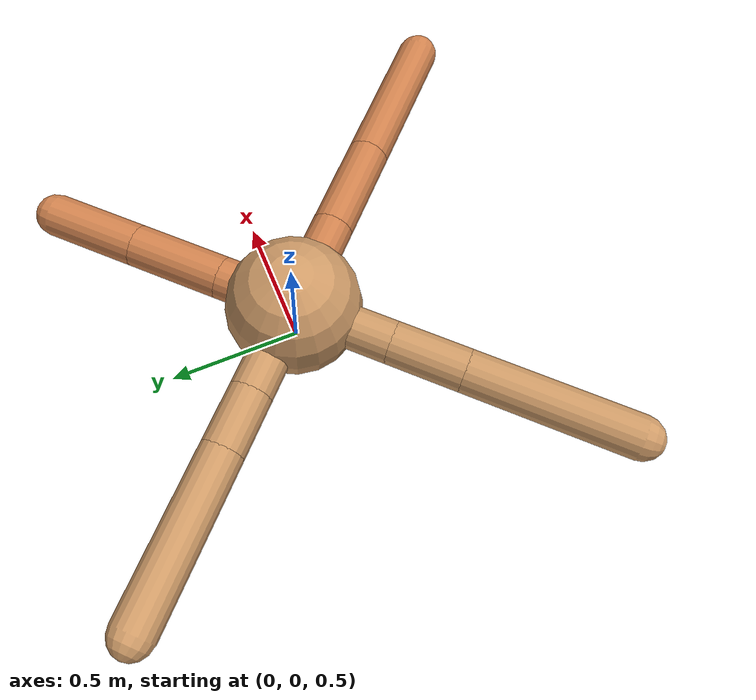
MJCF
<mujoco model="ant">
  <compiler angle="degree" coordinate="local" inertiafromgeom="true" />
  <option integrator="RK4" timestep="0.01" />
  <custom>
    <numeric data="0.0 0.0 0.55 1.0 0.0 0.0 0.0 0.0 1.0 0.0 -1.0 0.0 -1.0 0.0 1.0" name="init_qpos" />
  </custom>
  <default>
    <joint armature="1" damping="1" limited="true" />
    <geom conaffinity="0" condim="3" density="5.0" friction="1.5 0.1 0.1" margin="0.01" rgba="0.8 0.6 0.4 1" />
  </default>
  <worldbody>
    <body name="torso" pos="0 0 0.75">
      <geom name="torso_geom" pos="0 0 0" size="0.25" type="sphere" />

      <body name="front_left_leg" pos="0 0 0">
        <geom fromto="0.0 0.0 0.0 0.20441923659646874 0.20441923659646874 0.0" name="aux_1_geom" size="0.08" type="capsule" rgba=".8 .5 .3 1" />
        <body name="aux_1" pos="0.20441923659646874 0.20441923659646874 0.0">
          <joint axis="0 0 1" name="hip_1" pos="0.0 0.0 0.0" range="-40 40" type="hinge" />
          <geom fromto="0.0 0.0 0.0 0.2490854128267432 0.2490854128267432 0.0" name="left_leg_geom" size="0.08" type="capsule" rgba=".8 .5 .3 1" />
          <body pos="0.2490854128267432 0.2490854128267432 0.0" name="front_left_foot">
            <joint axis="-1 1 0" name="ankle_1" pos="0.0 0.0 0.0" range="30 100" type="hinge" />
            <geom fromto="0.0 0.0 0.0 0.24481470850614417 0.24481470850614417 0.0" name="left_ankle_geom" size="0.08" type="capsule" rgba=".8 .5 .3 1" />
          </body>
        </body>
      </body>
      <body name="front_right_leg" pos="0 0 0">
        <geom fromto="0.0 0.0 0.0 -0.25633468411144394 0.25633468411144394 0.0" name="aux_2_geom" size="0.08" type="capsule" />
        <body name="aux_2" pos="-0.25633468411144394 0.25633468411144394 0.0">
          <joint axis="0 0 1" name="hip_2" pos="0.0 0.0 0.0" range="-40 40" type="hinge" />
          <geom fromto="0.0 0.0 0.0 -0.1559331758494653 0.1559331758494653 0.0" name="right_leg_geom" size="0.08" type="capsule" />
          <body pos="-0.1559331758494653 0.1559331758494653 0.0" name="front_right_foot">
            <joint axis="1 1 0" name="ankle_2" pos="0.0 0.0 0.0" range="-100 -30" type="hinge" />
            <geom fromto="0.0 0.0 0.0 -0.43188666996801595 0.43188666996801595 0.0" name="right_ankle_geom" size="0.08" type="capsule" />
          </body>
        </body>
      </body>
      <body name="left_back_leg" pos="0 0 0">
        <geom fromto="0.0 0.0 0.0 -0.2675187919809366 -0.2675187919809366 0.0" name="aux_3_geom" size="0.08" type="capsule" />
        <body name="aux_3" pos="-0.2675187919809366 -0.2675187919809366 0.0">
          <joint axis="0 0 1" name="hip_3" pos="0.0 0.0 0.0" range="-40 40" type="hinge" />
          <geom fromto="0.0 0.0 0.0 -0.19304661842519785 -0.19304661842519785 0.0" name="back_leg_geom" size="0.08" type="capsule" />
          <body pos="-0.19304661842519785 -0.19304661842519785 0.0" name="left_back_foot">
            <joint axis="-1 1 0" name="ankle_3" pos="0.0 0.0 0.0" range="-100 -30" type="hinge" />
            <geom fromto="0.0 0.0 0.0 -0.4370175854602447 -0.4370175854602447 0.0" name="third_ankle_geom" size="0.08" type="capsule" />
          </body>
        </body>
      </body>
      <body name="right_back_leg" pos="0 0 0">
        <geom fromto="0.0 0.0 0.0 0.25420928781775415 -0.25420928781775415 0.0" name="aux_4_geom" size="0.08" type="capsule" rgba=".8 .5 .3 1" />
        <body name="aux_4" pos="0.25420928781775415 -0.25420928781775415 0.0">
          <joint axis="0 0 1" name="hip_4" pos="0.0 0.0 0.0" range="-40 40" type="hinge" />
          <geom fromto="0.0 0.0 0.0 0.2589302455367515 -0.2589302455367515 0.0" name="rightback_leg_geom" size="0.08" type="capsule" rgba=".8 .5 .3 1" />
          <body pos="0.2589302455367515 -0.2589302455367515 0.0" name="right_back_foot">
            <joint axis="1 1 0" name="ankle_4" pos="0.0 0.0 0.0" range="30 100" type="hinge" />
            <geom fromto="0.0 0.0 0.0 0.4031720308568826 -0.4031720308568826 0.0" name="fourth_ankle_geom" size="0.08" type="capsule" rgba=".8 .5 .3 1" />
          </body>
        </body>
      </body>
    </body>
  </worldbody>
  <actuator>
    <motor ctrllimited="true" ctrlrange="-1.0 1.0" joint="hip_4" gear="150" />
    <motor ctrllimited="true" ctrlrange="-1.0 1.0" joint="ankle_4" gear="150" />
    <motor ctrllimited="true" ctrlrange="-1.0 1.0" joint="hip_1" gear="150" />
    <motor ctrllimited="true" ctrlrange="-1.0 1.0" joint="ankle_1" gear="150" />
    <motor ctrllimited="true" ctrlrange="-1.0 1.0" joint="hip_2" gear="150" />
    <motor ctrllimited="true" ctrlrange="-1.0 1.0" joint="ankle_2" gear="150" />
    <motor ctrllimited="true" ctrlrange="-1.0 1.0" joint="hip_3" gear="150" />
    <motor ctrllimited="true" ctrlrange="-1.0 1.0" joint="ankle_3" gear="150" />
  </actuator>
</mujoco>
